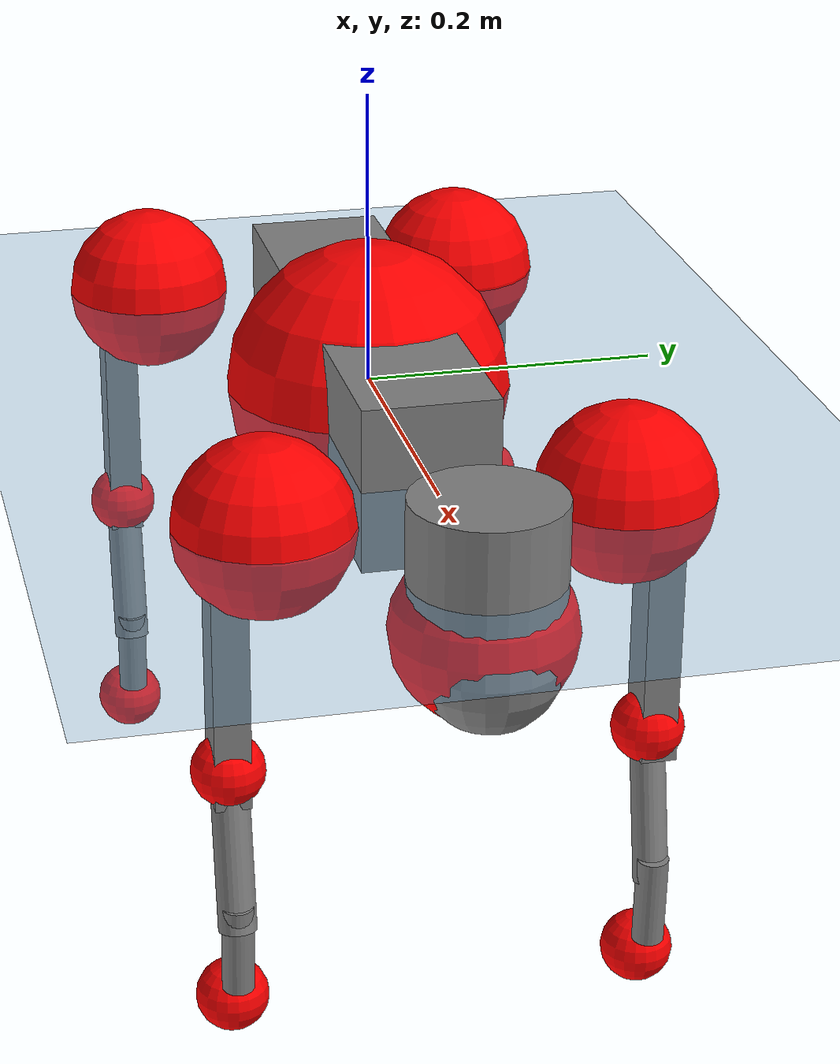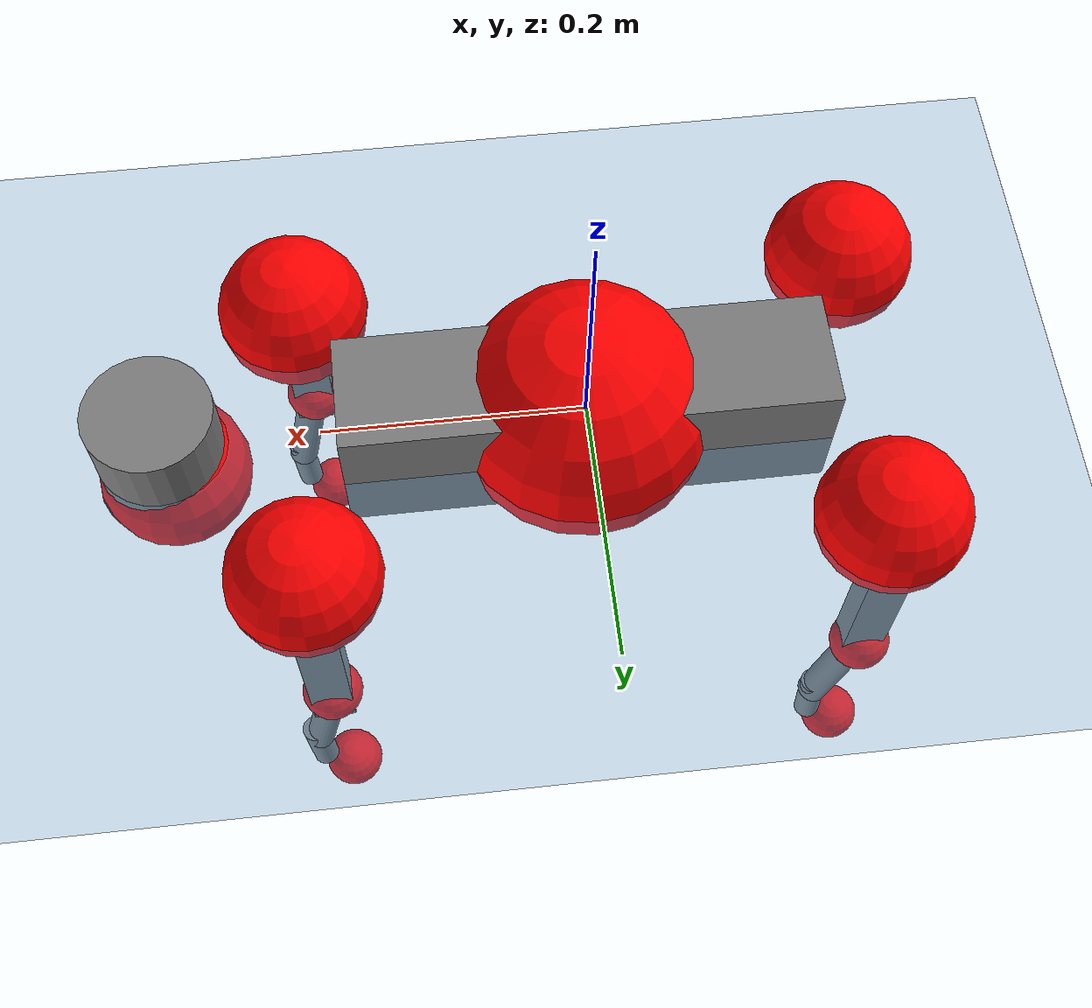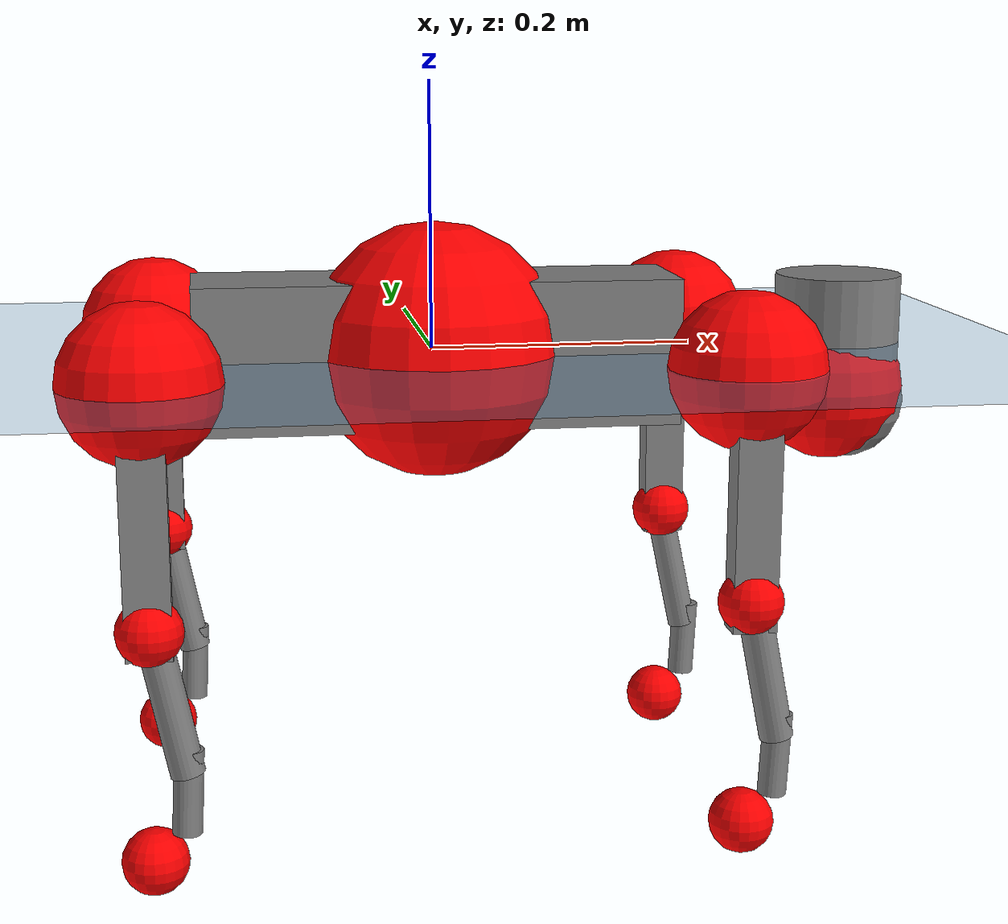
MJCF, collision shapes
<mujoco model="go2">
  <compiler angle="radian" assetdir="assets" balanceinertia="true" inertiafromgeom="false"/>

  <option timestep="0.005" density="1.2" viscosity="2e-05"/>

  <size nkey="1"/>

  <visual>
    <quality shadowsize="8192"/>
    <map shadowclip="0.5"/>
  </visual>

  <default>
    <default class="/">
      <geom contype="0" conaffinity="0" group="1" solref="-1000 -80"/>
      <site size="0.01 0.005 0.005" group="5"/>
      <general forcelimited="true" biastype="affine" gainprm="20" biasprm="0 -20 -0.5"/>
      <default class="go2">
        <joint armature="0.01" damping="0.01" frictionloss="0.2"/>
        <geom condim="1" margin="0.001"/>
        <default class="visual">
          <geom type="mesh" group="2"/>
        </default>
        <default class="collision">
          <geom group="3"/>
          <default class="foot">
            <geom size="0.022 0 0" condim="6" priority="1" friction="0.8 0.02 0.01" solimp="0.015 1 0.022"/>
          </default>
        </default>
        <default class="reward_collision_sphere">
          <geom group="5" rgba="1 0 0 1"/>
        </default>
      </default>
    </default>
  </default>

  <asset>
    <texture type="skybox" colorspace="auto" name="//unnamed_texture_0" builtin="gradient" rgb1="0.95 0.95 0.95" rgb2="0.95 0.95 0.95" width="100" height="600"/>
    <texture type="2d" colorspace="auto" name="texplane" builtin="checker" rgb1="0.345 0.575 0.748" rgb2="0.345 0.575 0.748" markrgb="1 1 1" width="512" height="512"/>
    <material name="MatPlane" class="/" texture="texplane" texuniform="true" texrepeat="2 2" specular="0.9"/>
    <material name="metal" class="/" rgba="0.9 0.95 0.95 1"/>
    <material name="black" class="/" rgba="0 0 0 1"/>
    <material name="white" class="/"/>
    <material name="gray" class="/" rgba="0.671705 0.692426 0.77427 1"/>
    <mesh name="base_0" class="/" file="base_0.obj"/>
    <mesh name="base_1" class="/" file="base_1.obj"/>
    <mesh name="base_2" class="/" file="base_2.obj"/>
    <mesh name="base_3" class="/" file="base_3.obj"/>
    <mesh name="base_4" class="/" file="base_4.obj"/>
    <mesh name="hip_0" class="/" file="hip_0.obj"/>
    <mesh name="hip_1" class="/" file="hip_1.obj"/>
    <mesh name="thigh_0" class="/" file="thigh_0.obj"/>
    <mesh name="thigh_1" class="/" file="thigh_1.obj"/>
    <mesh name="thigh_mirror_0" class="/" file="thigh_mirror_0.obj"/>
    <mesh name="thigh_mirror_1" class="/" file="thigh_mirror_1.obj"/>
    <mesh name="calf_0" class="/" file="calf_0.obj"/>
    <mesh name="calf_1" class="/" file="calf_1.obj"/>
    <mesh name="calf_mirror_0" class="/" file="calf_mirror_0.obj"/>
    <mesh name="calf_mirror_1" class="/" file="calf_mirror_1.obj"/>
    <mesh name="foot" class="/" file="foot.obj"/>
  </asset>

  <worldbody>
    <geom name="floor" class="/" size="100 100 0.125" type="plane" group="0" material="MatPlane"/>
    <light name="toplight_shadow" class="/" pos="0 0 5" dir="0.0990148 0.0990148 -0.990148" type="directional" ambient="0.04 0.04 0.04" diffuse="0.55 0.55 0.55" specular="0.12 0.12 0.12"/>
    <light name="toplight_fill" class="/" pos="0 0 5" dir="0.0990148 0.0990148 -0.990148" type="directional" castshadow="false" ambient="0.04 0.04 0.04" diffuse="0.3 0.3 0.3" specular="0.08 0.08 0.08"/>
    <body name="trunk" childclass="go2" pos="0.00248336 -0.000683858 -0.000495961" quat="1 -0.000172269 0.00030182 0.000373806">
      <inertial pos="0.023249 -0.000503486 -0.00423355" quat="-0.000942981 0.713639 -0.00317655 0.700506" mass="6.27483" diaginertia="0.194053 0.0997557 0.00795222"/>
      <joint name="//unnamed_joint_0" type="free" armature="0" damping="0" frictionloss="0"/>
      <geom name="//unnamed_geom_1" class="visual" material="black" mesh="base_0"/>
      <geom name="//unnamed_geom_2" class="visual" material="black" mesh="base_1"/>
      <geom name="//unnamed_geom_3" class="visual" material="black" mesh="base_2"/>
      <geom name="//unnamed_geom_4" class="visual" material="white" mesh="base_3"/>
      <geom name="//unnamed_geom_5" class="visual" material="gray" mesh="base_4"/>
      <geom name="trunk_1" class="collision" size="0.182351 0.0453212 0.0552579" type="box"/>
      <geom name="trunk_2" class="collision" size="0.0484719 0.0436247" pos="0.317335 0 0.00798487" type="cylinder"/>
      <geom name="trunk_3" class="collision" size="0.0455635" pos="0.326243 0 -0.0479092"/>
      <geom name="//unnamed_geom_9" class="reward_collision_sphere" size="0.0969437"/>
      <geom name="//unnamed_geom_10" class="reward_collision_sphere" size="0.0581662" pos="0.311768 0 -0.0359319"/>
      <site name="imu" pos="-0.0338033 0.00112401 0.0204474" size="0.00969437"/>
      <camera name="track" pos="0 -1.99273 0" quat="0.707107 0.707107 0 0" mode="trackcom"/>
      <camera name="ego_camera" pos="0.347399 0 0.0359319" quat="-0.5 -0.5 0.5 0.5"/>
      <body name="FL_hip" pos="0.215617 0.0464998 -0.000173926" quat="0.999999 9.51295e-05 -0.000907563 -0.000418446">
        <inertial pos="-0.00853578 0.00270103 -0.000239609" quat="0.497898 0.498914 0.504468 0.498693" mass="0.621296" diaginertia="0.00152088 0.00057039 0.000154994"/>
        <joint name="FL_hip_joint" pos="0 0 0" axis="0.999907 -0.0125187 -0.00541308" range="-1.0598 1.05033" armature="0.00838985" damping="0.00662" frictionloss="0.193808"/>
        <geom name="//unnamed_geom_11" class="visual" material="metal" mesh="hip_0"/>
        <geom name="//unnamed_geom_12" class="visual" material="gray" mesh="hip_1"/>
        <geom name="//unnamed_geom_13" class="collision" size="0.0445941 0.0193887" pos="0 0.0797094 0" quat="0.707107 0.707107 0 0" type="cylinder"/>
        <geom name="//unnamed_geom_14" class="reward_collision_sphere" size="0.0581662" pos="0 0.0697457 0"/>
        <body name="FL_thigh" pos="-0.00175006 0.0950669 0.000241594" quat="1 -1.14554e-05 5.36422e-07 1.44189e-05">
          <inertial pos="-0.0047007 -0.0219228 -0.0286434" quat="0.829846 0.0851454 -0.0196344 0.551108" mass="1.0689" diaginertia="0.0103377 0.00580807 0.000287487"/>
          <joint name="FL_thigh_joint" pos="0 0 0" axis="-0.0022862 0.99993 0.0116336" range="-1.58094 3.4954" armature="0.010847" damping="0" frictionloss="0.1881"/>
          <geom name="//unnamed_geom_15" class="visual" material="metal" mesh="thigh_0"/>
          <geom name="//unnamed_geom_16" class="visual" material="gray" mesh="thigh_1"/>
          <geom name="//unnamed_geom_17" class="collision" size="0.103245 0.0118756 0.0164804" pos="0 0 -0.0850388" quat="0.707107 0 0.707107 0" type="box"/>
          <body name="FL_calf" pos="-0.000449434 -0.00308712 -0.16989" quat="1 -0.000690904 0.000338826 -2.12905e-05">
            <inertial pos="0.00720884 0.000265435 -0.113121" quat="0.714117 0.00367732 0.00745563 0.699977" mass="0.224353" diaginertia="0.00251702 0.00144677 1.69282e-05"/>
            <joint name="FL_calf_joint" pos="0 0 0" axis="-0.0103578 0.999942 -0.00310143" stiffness="0.00214507" range="-2.72585 -0.830017" armature="0.00963327" damping="0" frictionloss="0.196639"/>
            <geom name="//unnamed_geom_18" class="visual" material="gray" mesh="calf_0"/>
            <geom name="//unnamed_geom_19" class="visual" material="black" mesh="calf_1"/>
            <geom name="FL_calf0" class="collision" size="0.0116332 0.0581662" pos="0.00890766 0 -0.0479092" quat="0.994493 0 -0.104807 0" type="cylinder"/>
            <geom name="//unnamed_geom_21" class="collision" size="0.0106638 0.0315067" pos="0.0222691 0 -0.118176" quat="0.999688 0 0.0249974 0" type="cylinder"/>
            <geom name="//unnamed_geom_22" class="visual" pos="0 0 -0.170078" quat="1 0 0 0" material="black" mesh="foot"/>
            <geom name="FL_foot" class="foot" size="0.0195603" pos="-0.00222691 0 -0.170078"/>
            <geom name="//unnamed_geom_24" class="reward_collision_sphere" size="0.0242359"/>
            <geom name="//unnamed_geom_25" class="reward_collision_sphere" size="0.0242359" pos="-0.00222691 0 -0.170078"/>
            <site name="FL_foot" class="foot" pos="-0.00222691 0 -0.170078" size="0.00969437"/>
          </body>
        </body>
      </body>
      <body name="FR_hip" pos="0.213239 -0.043412 -0.00189137" quat="1 -3.25415e-05 1.54294e-05 4.32003e-05">
        <inertial pos="-0.00320229 -0.00290715 -0.00270118" quat="0.497462 0.503784 0.497978 0.500751" mass="0.635764" diaginertia="0.00155235 0.000595702 0.000160991"/>
        <joint name="FR_hip_joint" pos="0 0 0" axis="0.999943 0.0102063 -0.00325169" range="-1.102 1.05346" armature="0.00957405" damping="0.0171116" frictionloss="0.172277"/>
        <geom name="//unnamed_geom_26" class="visual" pos="0 1.72385e-09 7.39396e-08" quat="4.63268e-05 1 0 0" material="metal" mesh="hip_0"/>
        <geom name="//unnamed_geom_27" class="visual" pos="0 2.79457e-09 -1.82881e-07" quat="4.63268e-05 1 0 0" material="gray" mesh="hip_1"/>
        <geom name="//unnamed_geom_28" class="collision" size="0.0445941 0.0193887" pos="0 -0.0797094 0" quat="0.707107 0.707107 0 0" type="cylinder"/>
        <geom name="//unnamed_geom_29" class="reward_collision_sphere" size="0.0581662" pos="0 -0.0697457 0"/>
        <body name="FR_thigh" pos="0.000962331 -0.0949353 0.00124669" quat="1 -1.36671e-05 -1.04982e-06 2.30564e-05">
          <inertial pos="-0.00375671 0.0249818 -0.027046" quat="0.551179 -0.0205212 0.0856311 0.829728" mass="1.03649" diaginertia="0.0101884 0.00563274 0.000281444"/>
          <joint name="FR_thigh_joint" pos="0 0 0" axis="0.000637158 -0.999985 -0.00546401" range="-3.49065 1.56908" armature="0.0102587" damping="0.00767688" frictionloss="0.186437"/>
          <geom name="//unnamed_geom_30" class="visual" material="metal" mesh="thigh_mirror_0"/>
          <geom name="//unnamed_geom_31" class="visual" material="gray" mesh="thigh_mirror_1"/>
          <geom name="//unnamed_geom_32" class="collision" size="0.103245 0.0118756 0.0164804" pos="0 0 -0.0850388" quat="0.707107 0 0.707107 0" type="box"/>
          <body name="FR_calf" pos="-0.000451488 -0.000371023 -0.167631" quat="0.999999 -0.000189203 0.000433812 0.00122962">
            <inertial pos="0.0096081 -0.000307371 -0.110985" quat="0.705768 -0.00353487 0.00131026 0.708433" mass="0.214767" diaginertia="0.00256726 0.00148665 1.79147e-05"/>
            <joint name="FR_calf_joint" pos="0 0 0" axis="0.00671091 -0.999974 0.00258348" stiffness="0.00752051" range="0.782743 2.71197" armature="0.0095929" damping="0.0215866" frictionloss="0.217558"/>
            <geom name="//unnamed_geom_33" class="visual" material="gray" mesh="calf_mirror_0"/>
            <geom name="//unnamed_geom_34" class="visual" material="black" mesh="calf_mirror_1"/>
            <geom name="FR_calf0" class="collision" size="0.0126027 0.0581662" pos="0.0111346 0 -0.0479092" quat="0.995004 0 -0.0998334 0" type="cylinder"/>
            <geom name="//unnamed_geom_36" class="collision" size="0.0106638 0.0315067" pos="0.0222691 0 -0.118176" quat="0.999688 0 0.0249974 0" type="cylinder"/>
            <geom name="//unnamed_geom_37" class="visual" pos="0 0 -0.170078" quat="1 0 0 0" material="black" mesh="foot"/>
            <geom name="FR_foot" class="foot" size="0.0218384" pos="-0.00222691 0 -0.170078"/>
            <geom name="//unnamed_geom_39" class="reward_collision_sphere" size="0.0242359"/>
            <geom name="//unnamed_geom_40" class="reward_collision_sphere" size="0.0242359" pos="-0.00222691 0 -0.170078"/>
            <site name="FR_foot" class="foot" pos="-0.00222691 0 -0.170078" size="0.00969437"/>
          </body>
        </body>
      </body>
      <body name="RL_hip" pos="-0.213054 0.044513 0.00128084" quat="1 -5.86931e-05 4.49948e-05 2.20593e-05">
        <inertial pos="0.00863666 -0.000493436 -0.000379131" quat="0.512221 0.497685 0.499959 0.489877" mass="0.620284" diaginertia="0.00153843 0.000588919 0.000151787"/>
        <joint name="RL_hip_joint" pos="0 0 0" axis="-0.999993 -0.000186872 0.00371329" range="-1.02013 1.02841" armature="0.00966695" damping="0.00998121" frictionloss="0.202749"/>
        <geom name="//unnamed_geom_41" class="visual" pos="-2.74389e-09 0 -5.37866e-07" quat="4.63268e-05 0 1 0" material="metal" mesh="hip_0"/>
        <geom name="//unnamed_geom_42" class="visual" pos="-4.44818e-09 0 -4.77011e-07" quat="4.63268e-05 0 1 0" material="gray" mesh="hip_1"/>
        <geom name="//unnamed_geom_43" class="collision" size="0.0445941 0.0193887" pos="0 0.0797094 0" quat="0.707107 0.707107 0 0" type="cylinder"/>
        <geom name="//unnamed_geom_44" class="reward_collision_sphere" size="0.0581662" pos="0 0.0697457 0"/>
        <body name="RL_thigh" pos="0.000723362 0.0948399 0.000143535" quat="1 6.22111e-05 -0.00034618 -4.1988e-05">
          <inertial pos="-0.00494704 -0.0194252 -0.0255026" quat="0.827522 0.0814682 -0.0121954 0.555357" mass="1.0585" diaginertia="0.0102163 0.00589105 0.000281259"/>
          <joint name="RL_thigh_joint" pos="0 0 0" axis="0.00925818 0.999956 -0.00153326" range="-0.496817 4.55278" armature="0.010995" damping="0.00166936" frictionloss="0.215964"/>
          <geom name="//unnamed_geom_45" class="visual" material="metal" mesh="thigh_0"/>
          <geom name="//unnamed_geom_46" class="visual" material="gray" mesh="thigh_1"/>
          <geom name="//unnamed_geom_47" class="collision" size="0.103245 0.0118756 0.0164804" pos="0 0 -0.0850388" quat="0.707107 0 0.707107 0" type="box"/>
          <body name="RL_calf" pos="-0.00138967 0.00200026 -0.172838" quat="0.999999 -0.000925623 0.000115987 -0.000848128">
            <inertial pos="0.00740518 -0.000549241 -0.110275" quat="0.709553 0.000656499 -0.004844 0.704635" mass="0.211963" diaginertia="0.00253154 0.00143599 1.72348e-05"/>
            <joint name="RL_calf_joint" pos="0 0 0" axis="0.00404283 0.999976 -0.00567095" range="-2.74148 -0.859382" armature="0.00919264" damping="0.0103359" frictionloss="0.17507"/>
            <geom name="//unnamed_geom_48" class="visual" material="gray" mesh="calf_0"/>
            <geom name="//unnamed_geom_49" class="visual" material="black" mesh="calf_1"/>
            <geom name="RL_calf0" class="collision" size="0.0126027 0.0581662" pos="0.0111346 0 -0.0479092" quat="0.995004 0 -0.0998334 0" type="cylinder"/>
            <geom name="//unnamed_geom_51" class="collision" size="0.0106638 0.0315067" pos="0.0222691 0 -0.118176" quat="0.999688 0 0.0249974 0" type="cylinder"/>
            <geom name="//unnamed_geom_52" class="visual" pos="0 0 -0.170078" quat="1 0 0 0" material="black" mesh="foot"/>
            <geom name="RL_foot" class="foot" size="0.0172539" pos="-0.00222691 0 -0.170078"/>
            <geom name="//unnamed_geom_54" class="reward_collision_sphere" size="0.0242359"/>
            <geom name="//unnamed_geom_55" class="reward_collision_sphere" size="0.0242359" pos="-0.00222691 0 -0.170078"/>
            <site name="RL_foot" class="foot" pos="-0.00222691 0 -0.170078" size="0.00969437"/>
          </body>
        </body>
      </body>
      <body name="RR_hip" pos="-0.217678 -0.0480577 -0.000121046" quat="1 -2.14827e-05 -0.000173795 -0.000373256">
        <inertial pos="0.00742744 -0.00165645 -0.000137604" quat="0.488933 0.495782 0.505462 0.509562" mass="0.621851" diaginertia="0.00153745 0.000598807 0.000158991"/>
        <joint name="RR_hip_joint" pos="0 0 0" axis="-0.999904 0.00974207 -0.00983516" stiffness="0.00270077" range="-1.04482 1.02709" armature="0.0100346" damping="0.0035911" frictionloss="0.1941"/>
        <geom name="//unnamed_geom_56" class="visual" pos="2.73984e-09 1.72385e-09 -6.11806e-07" quat="2.14617e-09 4.63268e-05 4.63268e-05 -1" material="metal" mesh="hip_0"/>
        <geom name="//unnamed_geom_57" class="visual" pos="4.4582e-09 2.79457e-09 -2.9413e-07" quat="2.14617e-09 4.63268e-05 4.63268e-05 -1" material="gray" mesh="hip_1"/>
        <geom name="//unnamed_geom_58" class="collision" size="0.0445941 0.0193887" pos="0 -0.0797094 0" quat="0.707107 0.707107 0 0" type="cylinder"/>
        <geom name="//unnamed_geom_59" class="reward_collision_sphere" size="0.0581662" pos="0 -0.0697457 0"/>
        <body name="RR_thigh" pos="0.000187018 -0.0946476 0.0011361" quat="1 -5.82063e-05 -7.23793e-05 5.52579e-06">
          <inertial pos="-0.00497776 0.0218545 -0.0271571" quat="0.562556 -0.0192706 0.0822872 0.822428" mass="1.06025" diaginertia="0.0100916 0.00587871 0.000293926"/>
          <joint name="RR_thigh_joint" pos="0 0 0" axis="0.00320169 -0.999994 0.00150263" range="-4.5449 0.507634" armature="0.0106763" damping="0.00538403" frictionloss="0.193318"/>
          <geom name="//unnamed_geom_60" class="visual" material="metal" mesh="thigh_mirror_0"/>
          <geom name="//unnamed_geom_61" class="visual" material="gray" mesh="thigh_mirror_1"/>
          <geom name="//unnamed_geom_62" class="collision" size="0.103245 0.0118756 0.0164804" pos="0 0 -0.0850388" quat="0.707107 0 0.707107 0" type="box"/>
          <body name="RR_calf" pos="0.000488684 -0.000919094 -0.170374" quat="1 -0.000211692 -0.00014497 0.000253322">
            <inertial pos="0.0044303 -0.00201 -0.110453" quat="0.705219 -0.0044733 0.00286537 0.70897" mass="0.225408" diaginertia="0.00250191 0.0014748 1.7227e-05"/>
            <joint name="RR_calf_joint" pos="0 0 0" axis="0.00371455 -0.99998 0.0050594" stiffness="0.00292741" range="0.855379 2.7781" armature="0.00971157" damping="0.0096642" frictionloss="0.219637"/>
            <geom name="//unnamed_geom_63" class="visual" material="gray" mesh="calf_mirror_0"/>
            <geom name="//unnamed_geom_64" class="visual" material="black" mesh="calf_mirror_1"/>
            <geom name="RR_calf0" class="collision" size="0.0126027 0.0581662" pos="0.0111346 0 -0.0479092" quat="0.995004 0 -0.0998334 0" type="cylinder"/>
            <geom name="//unnamed_geom_66" class="collision" size="0.0106638 0.0315067" pos="0.0222691 0 -0.118176" quat="0.999688 0 0.0249974 0" type="cylinder"/>
            <geom name="//unnamed_geom_67" class="visual" pos="0 0 -0.170078" quat="1 0 0 0" material="black" mesh="foot"/>
            <geom name="RR_foot" class="foot" size="0.0231511" pos="-0.00222691 0 -0.170078"/>
            <geom name="//unnamed_geom_69" class="reward_collision_sphere" size="0.0242359"/>
            <geom name="//unnamed_geom_70" class="reward_collision_sphere" size="0.0242359" pos="-0.00222691 0 -0.170078"/>
            <site name="RR_foot" class="foot" pos="-0.00222691 0 -0.170078" size="0.00969437"/>
          </body>
        </body>
      </body>
    </body>
  </worldbody>

  <contact>
    <pair class="/" geom1="floor" geom2="FL_foot" name="//unnamed_contact_0"/>
    <pair class="/" geom1="floor" geom2="FR_foot" name="//unnamed_contact_1"/>
    <pair class="/" geom1="floor" geom2="RL_foot" name="//unnamed_contact_2"/>
    <pair class="/" geom1="floor" geom2="RR_foot" name="//unnamed_contact_3"/>
  </contact>

  <actuator>
    <general name="FL_hip" class="/" joint="FL_hip_joint" forcerange="-22.838 22.838" gainprm="19.4946" biasprm="0 -19.4946 -0.472074"/>
    <general name="FL_thigh" class="/" joint="FL_thigh_joint" forcerange="-21.0612 21.0612" gainprm="19.4946" biasprm="0 -19.4946 -0.472074"/>
    <general name="FL_calf" class="/" joint="FL_calf_joint" forcerange="-43.9643 43.9643" gainprm="19.4946" biasprm="0 -19.4946 -0.472074"/>
    <general name="FR_hip" class="/" joint="FR_hip_joint" forcerange="-22.8447 22.8447" gainprm="19.4946" biasprm="0 -19.4946 -0.472074"/>
    <general name="FR_thigh" class="/" joint="FR_thigh_joint" forcerange="-23.0346 23.0346" gainprm="19.4946" biasprm="0 -19.4946 -0.472074"/>
    <general name="FR_calf" class="/" joint="FR_calf_joint" forcerange="-45.9246 45.9246" gainprm="19.4946" biasprm="0 -19.4946 -0.472074"/>
    <general name="RL_hip" class="/" joint="RL_hip_joint" forcerange="-22.9456 22.9456" gainprm="19.4946" biasprm="0 -19.4946 -0.472074"/>
    <general name="RL_thigh" class="/" joint="RL_thigh_joint" forcerange="-23.9358 23.9358" gainprm="19.4946" biasprm="0 -19.4946 -0.472074"/>
    <general name="RL_calf" class="/" joint="RL_calf_joint" forcerange="-44.0148 44.0148" gainprm="19.4946" biasprm="0 -19.4946 -0.472074"/>
    <general name="RR_hip" class="/" joint="RR_hip_joint" forcerange="-22.4981 22.4981" gainprm="19.4946" biasprm="0 -19.4946 -0.472074"/>
    <general name="RR_thigh" class="/" joint="RR_thigh_joint" forcerange="-22.0293 22.0293" gainprm="19.4946" biasprm="0 -19.4946 -0.472074"/>
    <general name="RR_calf" class="/" joint="RR_calf_joint" forcerange="-39.804 39.804" gainprm="19.4946" biasprm="0 -19.4946 -0.472074"/>
  </actuator>

  <sensor>
    <gyro site="imu" name="imu_angular_velocity"/>
    <velocimeter site="imu" name="imu_linear_velocity"/>
    <framelinvel objtype="site" objname="FL_foot" name="FL_foot_global_linear_velocity"/>
    <framelinvel objtype="site" objname="FR_foot" name="FR_foot_global_linear_velocity"/>
    <framelinvel objtype="site" objname="RL_foot" name="RL_foot_global_linear_velocity"/>
    <framelinvel objtype="site" objname="RR_foot" name="RR_foot_global_linear_velocity"/>
  </sensor>

  <keyframe>
    <key name="home" qpos="0 0 0.325 1 0 0 0 0.1 0.8 -1.5 -0.1 -0.8 1.5 -0.1 0.8 -1.5 0.1 -0.8 1.5"/>
  </keyframe>
</mujoco>
